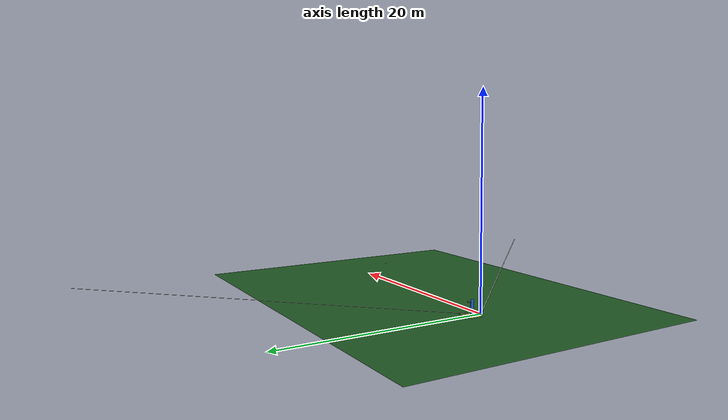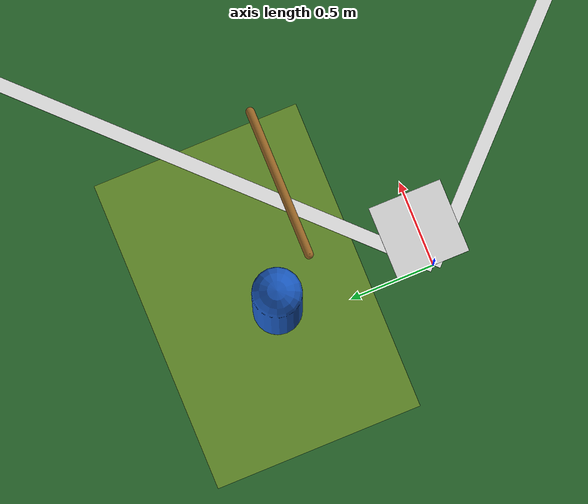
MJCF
<mujoco model="fly_ohtani_baseball_b0">
  <compiler angle="radian" coordinate="local" inertiafromgeom="true"/>
  <option timestep="0.00025" gravity="0 0 -9.81" integrator="RK4"/>

  <default>
    <geom condim="3" friction="0.8 0.02 0.001" solref="0.01 1" solimp="0.9 0.95 0.001"/>
    <joint damping="0.05" armature="0.002"/>
  </default>

  <visual>
    <global offwidth="1280" offheight="720"/>
  </visual>

  <asset>
    <material name="ground_mat" rgba="0.16 0.42 0.18 1"/>
    <material name="dirt_mat" rgba="0.55 0.4 0.28 1"/>
    <material name="plate_mat" rgba="0.9 0.9 0.9 1"/>
    <material name="rubber_mat" rgba="0.85 0.85 0.85 1"/>
    <material name="box_mat" rgba="0.9 0.9 0.2 0.35"/>
    <material name="line_mat" rgba="0.95 0.95 0.95 1"/>
    <material name="batter_mat" rgba="0.1 0.35 0.75 1"/>
    <material name="bat_mat" rgba="0.6 0.4 0.15 1"/>
    <material name="ball_mat" rgba="0.95 0.18 0.18 1"/>
  </asset>

  <!-- Only the hinge attachment between the batter's body and the bat
       legitimately overlaps; every other pair (ball-ground, ball-bat,
       ball-batter, bat-ground) stays active. -->
  <contact>
    <exclude body1="batter_body" body2="bat_body"/>
  </contact>

  <worldbody>
    <light name="key" pos="9 -6 12" dir="0 1 -1.2" diffuse="1.2 1.2 1.1" directional="true"/>
    <light name="fill" pos="9 8 10" dir="0 -1 -1.2" diffuse="0.6 0.6 0.6" directional="true"/>
    <light name="overhead" pos="9 0 15" dir="0 0 -1" diffuse="0.5 0.5 0.5" directional="true"/>

    <!-- cameras: full park, behind catcher, batter side view, fly POV -->
    <camera name="park_wide" pos="9 -22 14" xyaxes="1 0 0 0 0.55 0.85"/>
    <camera name="behind_catcher" pos="-3.2 0 1.6" xyaxes="0 -1 0 0.15 0 0.99"/>
    <camera name="batter_side" pos="0.2 6.2 1.7" xyaxes="-1 0 0 0 -0.12 0.99"/>
    <camera name="fly_pov" pos="0.25 0.65 1.5" xyaxes="0 -1 0 0.2 0 0.98"/>

    <geom name="ground" type="plane" pos="9 0 0" size="20 15 0.1" material="ground_mat"/>

    <!-- home plate: visual reference only, non-colliding (ball/bat interact
         with the flat ground, not the plate's raised edge) -->
    <geom
      name="home_plate"
      type="box"
      pos="0.2159 0 0.006"
      size="0.2159 0.2159 0.006"
      material="plate_mat"
      contype="0"
      conaffinity="0"
    />

    <geom
      name="pitcher_rubber"
      type="box"
      pos="18.4404 0 0.0076"
      size="0.0762 0.3048 0.0076"
      material="rubber_mat"
      contype="0"
      conaffinity="0"
    />

    <!-- right-handed batter's box: standard 6in offset from the plate edge,
         4ft x 6ft box (ENV-002 section 1) -->
    <geom
      name="batter_box_rh"
      type="box"
      pos="0.2159 0.9779 0.003"
      size="0.9144 0.6096 0.003"
      material="box_mat"
      contype="0"
      conaffinity="0"
    />

    <!-- foul lines: visual only, +/-45 degrees from home plate -->
    <geom
      name="foul_line_first"
      type="box"
      pos="14.849 -14.849 0.004"
      size="21 0.04 0.004"
      euler="0 0 -0.7853981634"
      material="line_mat"
      contype="0"
      conaffinity="0"
    />
    <geom
      name="foul_line_third"
      type="box"
      pos="14.849 14.849 0.004"
      size="21 0.04 0.004"
      euler="0 0 0.7853981634"
      material="line_mat"
      contype="0"
      conaffinity="0"
    />

    <body name="batter_body" pos="0.1 0.9 1.0">
      <geom
        name="batter_torso"
        type="capsule"
        fromto="0 0 -1.0 0 0 0.35"
        size="0.14"
        mass="55"
        material="batter_mat"
      />
      <body name="bat_body" pos="0.15 -0.25 0">
        <!-- horizontal swing about the vertical axis -->
        <joint name="bat_hinge" type="hinge" axis="0 0 1" range="-2.0 2.0" limited="true"/>
        <geom
          name="bat_geom"
          type="capsule"
          fromto="0 0 0 0.85 0 0"
          size="0.025"
          mass="0.9"
          material="bat_mat"
        />
      </body>
    </body>

    <!-- pitcher release marker (ENV-002: "손 표시와 생성 위치는 정확히 같아야
         한다"). No full pitcher body for B0; env code asserts the ball's
         reset() spawn position equals this marker's position exactly. -->
    <geom
      name="release_marker"
      type="sphere"
      pos="16.5 0 1.8"
      size="0.05"
      material="rubber_mat"
      contype="0"
      conaffinity="0"
    />

    <body name="ball" pos="16.5 0 1.8">
      <joint name="ball_free" type="free" damping="0" armature="0"/>
      <geom name="ball_geom" type="sphere" size="0.0366" mass="0.145" material="ball_mat"/>
    </body>
  </worldbody>

  <actuator>
    <motor name="bat_motor" joint="bat_hinge" gear="12" ctrllimited="true" ctrlrange="-1 1"/>
  </actuator>
</mujoco>
